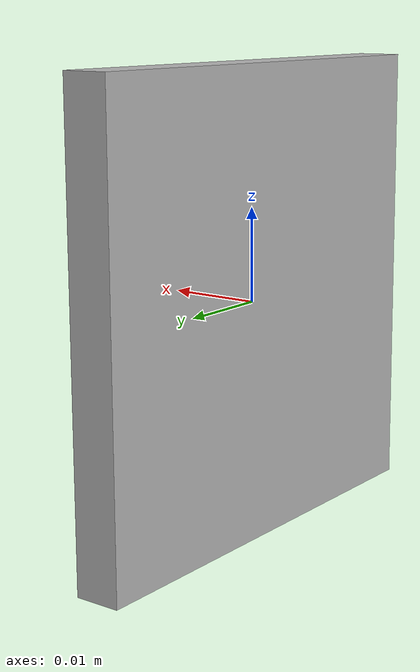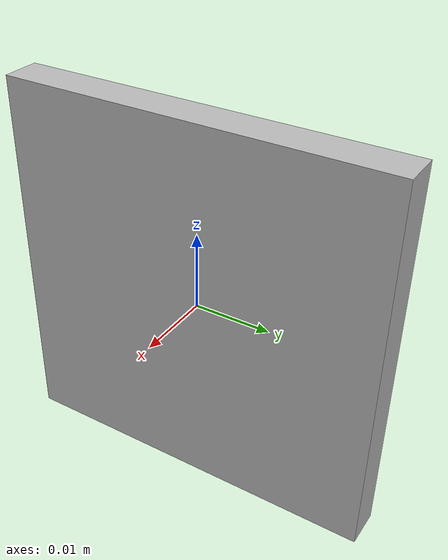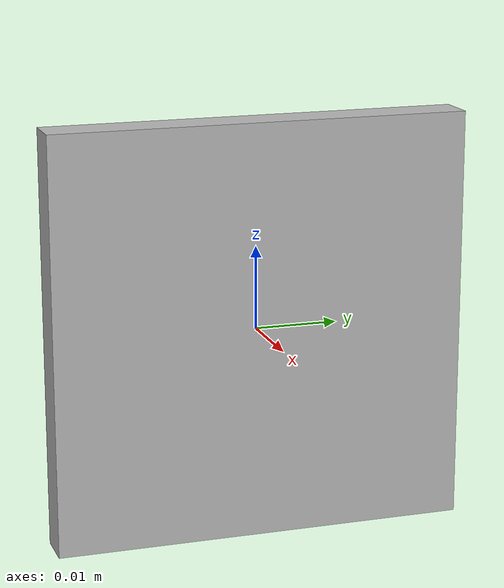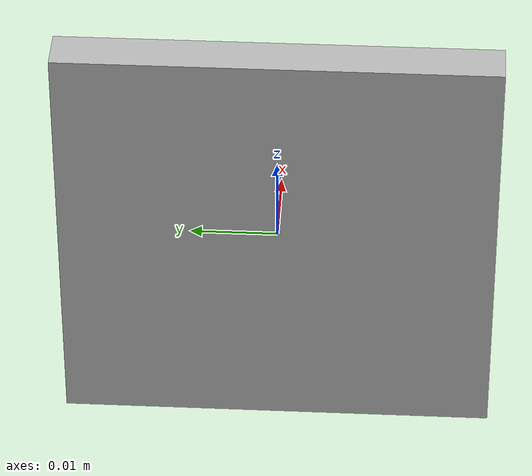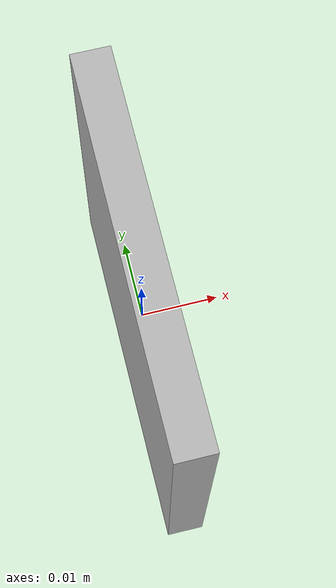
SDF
<?xml version="1.0"?>
<sdf version="1.6">
  <model name="aruco_marker_26">
    <static>true</static>
    <link name="link">
      <visual name="visual">
        <geometry>
          <box>
            <size>0.005 0.05 0.05</size>
          </box>
        </geometry>
        <material>
          <script>
            <uri>model://aruco_marker_26/materials/scripts</uri>
            <uri>model://aruco_marker_26/materials/textures</uri>
            <name>Aruco/Marker26</name>
          </script>
        </material>
      </visual>
      <collision name="collision">
        <geometry>
          <box>
            <size>0.005 0.05 0.05</size>
          </box>
        </geometry>
      </collision>
    </link>
  </model>
</sdf>
